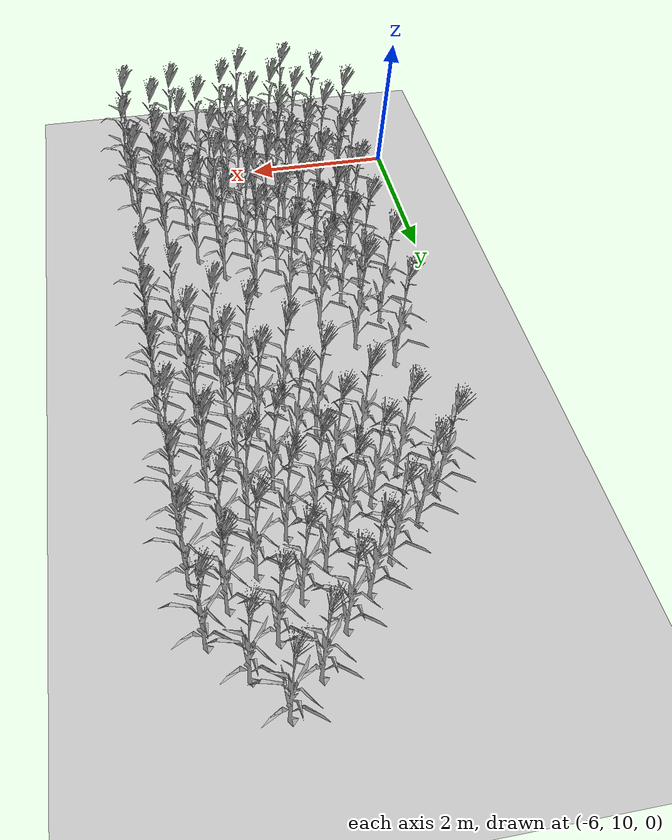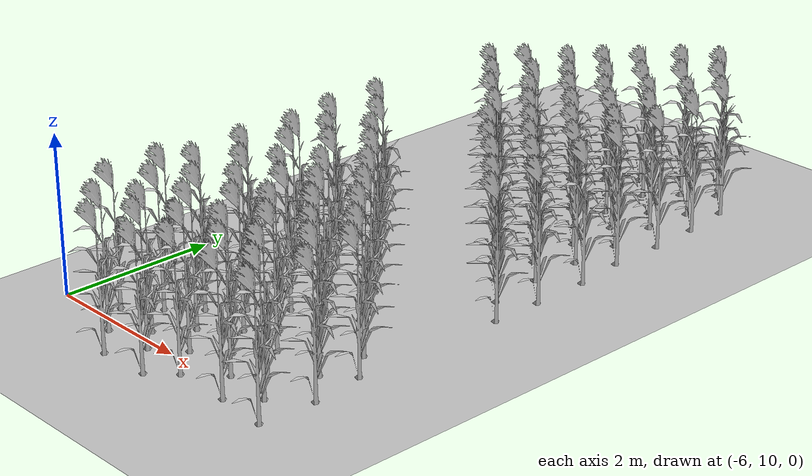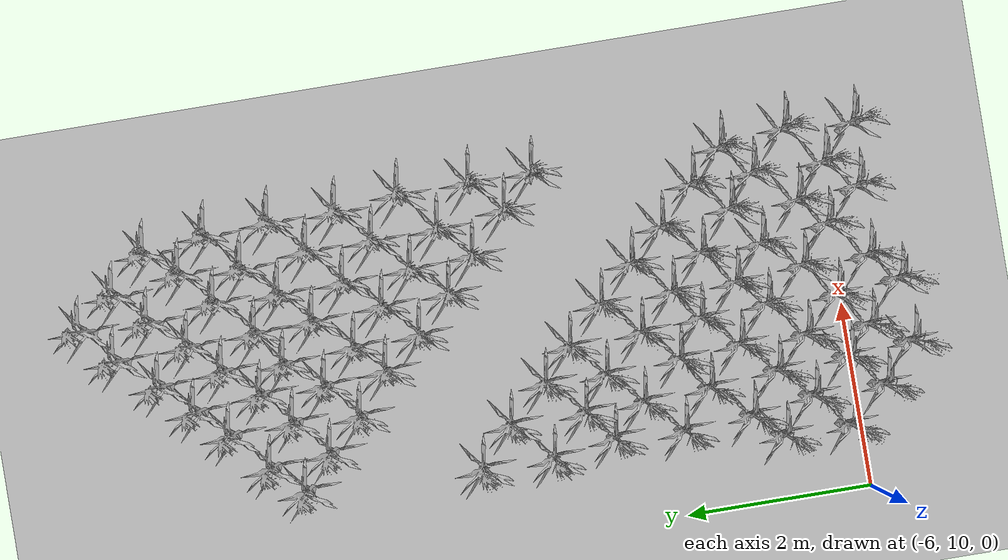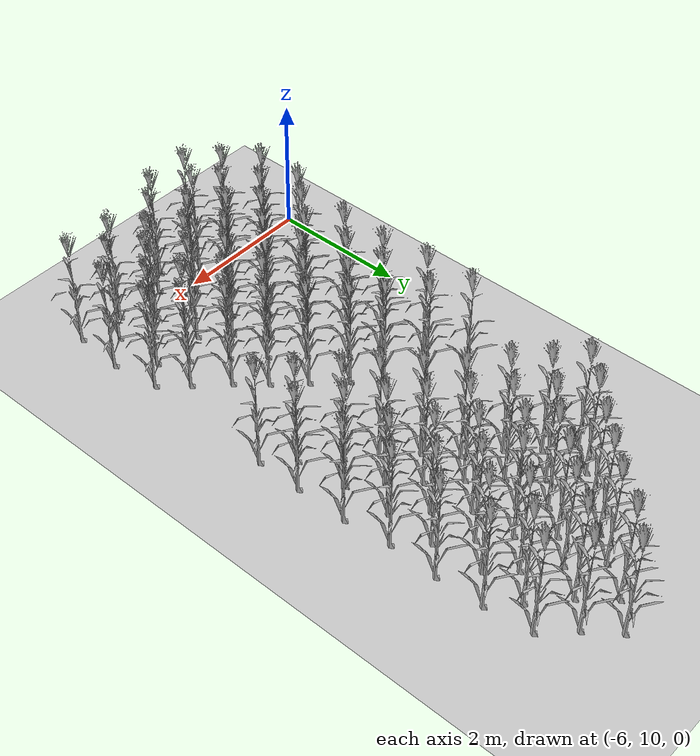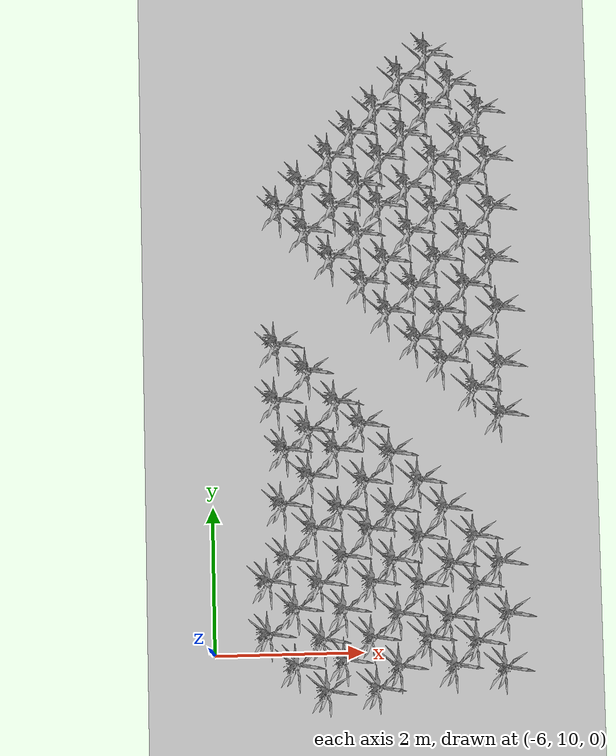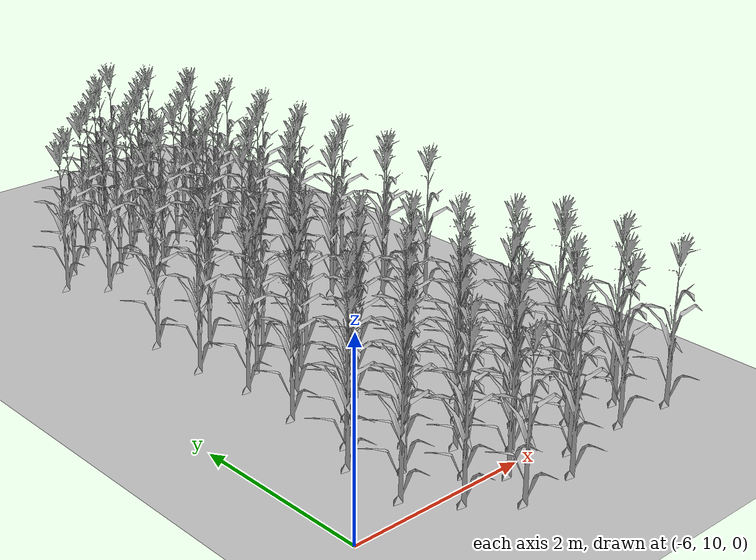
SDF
<sdf version="1.7">
 <world name="farmland_world">
  <model name="ground_plane">
   <static>1</static>
   <link name="link">
    <collision name="collision">
     <geometry><plane><normal>0 0 1</normal><size>40.0 40.0</size></plane></geometry>
     <surface><friction><ode><mu>100</mu><mu2>50</mu2></ode></friction></surface>
    </collision>
    <visual name="visual">
     <cast_shadows>0</cast_shadows>
     <geometry><plane><normal>0 0 1</normal><size>40.0 40.0</size></plane></geometry>
     <material>
      <script><uri>file://media/materials/scripts/gazebo.material</uri><name>Gazebo/Grey</name></script>
     </material>
    </visual>
   </link>
  </model>
  <model name="tree_3_26">
   <static>1</static>
   <link name="link">
    <collision name="collision">
     <geometry><mesh><uri>model://Corn_low_poly/corn.obj</uri><scale>1 1 1</scale></mesh></geometry>
     <surface><friction><ode><mu>100</mu><mu2>50</mu2></ode></friction></surface>
    </collision>
    <visual name="visual">
     <geometry><mesh><uri>model://Corn_low_poly/corn.obj</uri><scale>1 1 1</scale></mesh></geometry>
    </visual>
   </link>
   <pose>-4.469059998460315 9.478599175716573 0 0 0 0</pose>
  </model>
  <model name="tree_3_27">
   <static>1</static>
   <link name="link">
    <collision name="collision">
     <geometry><mesh><uri>model://Corn_low_poly/corn.obj</uri><scale>1 1 1</scale></mesh></geometry>
     <surface><friction><ode><mu>100</mu><mu2>50</mu2></ode></friction></surface>
    </collision>
    <visual name="visual">
     <geometry><mesh><uri>model://Corn_low_poly/corn.obj</uri><scale>1 1 1</scale></mesh></geometry>
    </visual>
   </link>
   <pose>-4.874260545740323 9.828441017179236 0 0 0 0</pose>
  </model>
  <model name="tree_3_28">
   <static>1</static>
   <link name="link">
    <collision name="collision">
     <geometry><mesh><uri>model://Corn_low_poly/corn.obj</uri><scale>1 1 1</scale></mesh></geometry>
     <surface><friction><ode><mu>100</mu><mu2>50</mu2></ode></friction></surface>
    </collision>
    <visual name="visual">
     <geometry><mesh><uri>model://Corn_low_poly/corn.obj</uri><scale>1 1 1</scale></mesh></geometry>
    </visual>
   </link>
   <pose>-5.236940694716296 10.24712145402504 0 0 0 0</pose>
  </model>
  <model name="tree_3_67">
   <static>1</static>
   <link name="link">
    <collision name="collision">
     <geometry><mesh><uri>model://Corn_low_poly/corn.obj</uri><scale>1 1 1</scale></mesh></geometry>
     <surface><friction><ode><mu>100</mu><mu2>50</mu2></ode></friction></surface>
    </collision>
    <visual name="visual">
     <geometry><mesh><uri>model://Corn_low_poly/corn.obj</uri><scale>1 1 1</scale></mesh></geometry>
    </visual>
   </link>
   <pose>-3.803372568948871 9.50891590499352 0 0 0 0</pose>
  </model>
  <model name="tree_3_68">
   <static>1</static>
   <link name="link">
    <collision name="collision">
     <geometry><mesh><uri>model://Corn_low_poly/corn.obj</uri><scale>1 1 1</scale></mesh></geometry>
     <surface><friction><ode><mu>100</mu><mu2>50</mu2></ode></friction></surface>
    </collision>
    <visual name="visual">
     <geometry><mesh><uri>model://Corn_low_poly/corn.obj</uri><scale>1 1 1</scale></mesh></geometry>
    </visual>
   </link>
   <pose>-4.231819792319192 9.886134785722836 0 0 0 0</pose>
  </model>
  <model name="tree_3_69">
   <static>1</static>
   <link name="link">
    <collision name="collision">
     <geometry><mesh><uri>model://Corn_low_poly/corn.obj</uri><scale>1 1 1</scale></mesh></geometry>
     <surface><friction><ode><mu>100</mu><mu2>50</mu2></ode></friction></surface>
    </collision>
    <visual name="visual">
     <geometry><mesh><uri>model://Corn_low_poly/corn.obj</uri><scale>1 1 1</scale></mesh></geometry>
    </visual>
   </link>
   <pose>-4.523126618101992 10.159602009444866 0 0 0 0</pose>
  </model>
  <model name="tree_3_70">
   <static>1</static>
   <link name="link">
    <collision name="collision">
     <geometry><mesh><uri>model://Corn_low_poly/corn.obj</uri><scale>1 1 1</scale></mesh></geometry>
     <surface><friction><ode><mu>100</mu><mu2>50</mu2></ode></friction></surface>
    </collision>
    <visual name="visual">
     <geometry><mesh><uri>model://Corn_low_poly/corn.obj</uri><scale>1 1 1</scale></mesh></geometry>
    </visual>
   </link>
   <pose>-4.870097143145961 10.584515150752816 0 0 0 0</pose>
  </model>
  <model name="tree_3_71">
   <static>1</static>
   <link name="link">
    <collision name="collision">
     <geometry><mesh><uri>model://Corn_low_poly/corn.obj</uri><scale>1 1 1</scale></mesh></geometry>
     <surface><friction><ode><mu>100</mu><mu2>50</mu2></ode></friction></surface>
    </collision>
    <visual name="visual">
     <geometry><mesh><uri>model://Corn_low_poly/corn.obj</uri><scale>1 1 1</scale></mesh></geometry>
    </visual>
   </link>
   <pose>-5.231342893370602 10.948013698945493 0 0 0 0</pose>
  </model>
  <model name="tree_3_109">
   <static>1</static>
   <link name="link">
    <collision name="collision">
     <geometry><mesh><uri>model://Corn_low_poly/corn.obj</uri><scale>1 1 1</scale></mesh></geometry>
     <surface><friction><ode><mu>100</mu><mu2>50</mu2></ode></friction></surface>
    </collision>
    <visual name="visual">
     <geometry><mesh><uri>model://Corn_low_poly/corn.obj</uri><scale>1 1 1</scale></mesh></geometry>
    </visual>
   </link>
   <pose>-3.5115282742998133 9.789023667474527 0 0 0 0</pose>
  </model>
  <model name="tree_3_110">
   <static>1</static>
   <link name="link">
    <collision name="collision">
     <geometry><mesh><uri>model://Corn_low_poly/corn.obj</uri><scale>1 1 1</scale></mesh></geometry>
     <surface><friction><ode><mu>100</mu><mu2>50</mu2></ode></friction></surface>
    </collision>
    <visual name="visual">
     <geometry><mesh><uri>model://Corn_low_poly/corn.obj</uri><scale>1 1 1</scale></mesh></geometry>
    </visual>
   </link>
   <pose>-3.8657024815988876 10.18034561499168 0 0 0 0</pose>
  </model>
  <model name="tree_3_111">
   <static>1</static>
   <link name="link">
    <collision name="collision">
     <geometry><mesh><uri>model://Corn_low_poly/corn.obj</uri><scale>1 1 1</scale></mesh></geometry>
     <surface><friction><ode><mu>100</mu><mu2>50</mu2></ode></friction></surface>
    </collision>
    <visual name="visual">
     <geometry><mesh><uri>model://Corn_low_poly/corn.obj</uri><scale>1 1 1</scale></mesh></geometry>
    </visual>
   </link>
   <pose>-4.2301715889407125 10.559730641724155 0 0 0 0</pose>
  </model>
  <model name="tree_3_112">
   <static>1</static>
   <link name="link">
    <collision name="collision">
     <geometry><mesh><uri>model://Corn_low_poly/corn.obj</uri><scale>1 1 1</scale></mesh></geometry>
     <surface><friction><ode><mu>100</mu><mu2>50</mu2></ode></friction></surface>
    </collision>
    <visual name="visual">
     <geometry><mesh><uri>model://Corn_low_poly/corn.obj</uri><scale>1 1 1</scale></mesh></geometry>
    </visual>
   </link>
   <pose>-4.547789902803861 10.918492866954 0 0 0 0</pose>
  </model>
  <model name="tree_3_113">
   <static>1</static>
   <link name="link">
    <collision name="collision">
     <geometry><mesh><uri>model://Corn_low_poly/corn.obj</uri><scale>1 1 1</scale></mesh></geometry>
     <surface><friction><ode><mu>100</mu><mu2>50</mu2></ode></friction></surface>
    </collision>
    <visual name="visual">
     <geometry><mesh><uri>model://Corn_low_poly/corn.obj</uri><scale>1 1 1</scale></mesh></geometry>
    </visual>
   </link>
   <pose>-4.97658573238629 11.24874929194991 0 0 0 0</pose>
  </model>
  <model name="tree_3_150">
   <static>1</static>
   <link name="link">
    <collision name="collision">
     <geometry><mesh><uri>model://Corn_low_poly/corn.obj</uri><scale>1 1 1</scale></mesh></geometry>
     <surface><friction><ode><mu>100</mu><mu2>50</mu2></ode></friction></surface>
    </collision>
    <visual name="visual">
     <geometry><mesh><uri>model://Corn_low_poly/corn.obj</uri><scale>1 1 1</scale></mesh></geometry>
    </visual>
   </link>
   <pose>-2.777045149808714 9.783201511120538 0 0 0 0</pose>
  </model>
  <model name="tree_3_151">
   <static>1</static>
   <link name="link">
    <collision name="collision">
     <geometry><mesh><uri>model://Corn_low_poly/corn.obj</uri><scale>1 1 1</scale></mesh></geometry>
     <surface><friction><ode><mu>100</mu><mu2>50</mu2></ode></friction></surface>
    </collision>
    <visual name="visual">
     <geometry><mesh><uri>model://Corn_low_poly/corn.obj</uri><scale>1 1 1</scale></mesh></geometry>
    </visual>
   </link>
   <pose>-3.1170916047006396 10.160107613300994 0 0 0 0</pose>
  </model>
  <model name="tree_3_152">
   <static>1</static>
   <link name="link">
    <collision name="collision">
     <geometry><mesh><uri>model://Corn_low_poly/corn.obj</uri><scale>1 1 1</scale></mesh></geometry>
     <surface><friction><ode><mu>100</mu><mu2>50</mu2></ode></friction></surface>
    </collision>
    <visual name="visual">
     <geometry><mesh><uri>model://Corn_low_poly/corn.obj</uri><scale>1 1 1</scale></mesh></geometry>
    </visual>
   </link>
   <pose>-3.5062092526561104 10.484946603833823 0 0 0 0</pose>
  </model>
  <model name="tree_3_153">
   <static>1</static>
   <link name="link">
    <collision name="collision">
     <geometry><mesh><uri>model://Corn_low_poly/corn.obj</uri><scale>1 1 1</scale></mesh></geometry>
     <surface><friction><ode><mu>100</mu><mu2>50</mu2></ode></friction></surface>
    </collision>
    <visual name="visual">
     <geometry><mesh><uri>model://Corn_low_poly/corn.obj</uri><scale>1 1 1</scale></mesh></geometry>
    </visual>
   </link>
   <pose>-3.8455674199756977 10.914706619010351 0 0 0 0</pose>
  </model>
  <model name="tree_3_154">
   <static>1</static>
   <link name="link">
    <collision name="collision">
     <geometry><mesh><uri>model://Corn_low_poly/corn.obj</uri><scale>1 1 1</scale></mesh></geometry>
     <surface><friction><ode><mu>100</mu><mu2>50</mu2></ode></friction></surface>
    </collision>
    <visual name="visual">
     <geometry><mesh><uri>model://Corn_low_poly/corn.obj</uri><scale>1 1 1</scale></mesh></geometry>
    </visual>
   </link>
   <pose>-4.21740432793989 11.260427735038299 0 0 0 0</pose>
  </model>
  <model name="tree_3_155">
   <static>1</static>
   <link name="link">
    <collision name="collision">
     <geometry><mesh><uri>model://Corn_low_poly/corn.obj</uri><scale>1 1 1</scale></mesh></geometry>
     <surface><friction><ode><mu>100</mu><mu2>50</mu2></ode></friction></surface>
    </collision>
    <visual name="visual">
     <geometry><mesh><uri>model://Corn_low_poly/corn.obj</uri><scale>1 1 1</scale></mesh></geometry>
    </visual>
   </link>
   <pose>-4.614973447166338 11.642006517294606 0 0 0 0</pose>
  </model>
  <model name="tree_3_156">
   <static>1</static>
   <link name="link">
    <collision name="collision">
     <geometry><mesh><uri>model://Corn_low_poly/corn.obj</uri><scale>1 1 1</scale></mesh></geometry>
     <surface><friction><ode><mu>100</mu><mu2>50</mu2></ode></friction></surface>
    </collision>
    <visual name="visual">
     <geometry><mesh><uri>model://Corn_low_poly/corn.obj</uri><scale>1 1 1</scale></mesh></geometry>
    </visual>
   </link>
   <pose>-5.023405975926107 11.973016827268847 0 0 0 0</pose>
  </model>
  <model name="tree_3_191">
   <static>1</static>
   <link name="link">
    <collision name="collision">
     <geometry><mesh><uri>model://Corn_low_poly/corn.obj</uri><scale>1 1 1</scale></mesh></geometry>
     <surface><friction><ode><mu>100</mu><mu2>50</mu2></ode></friction></surface>
    </collision>
    <visual name="visual">
     <geometry><mesh><uri>model://Corn_low_poly/corn.obj</uri><scale>1 1 1</scale></mesh></geometry>
    </visual>
   </link>
   <pose>-2.1156740361542545 9.735910322645081 0 0 0 0</pose>
  </model>
  <model name="tree_3_192">
   <static>1</static>
   <link name="link">
    <collision name="collision">
     <geometry><mesh><uri>model://Corn_low_poly/corn.obj</uri><scale>1 1 1</scale></mesh></geometry>
     <surface><friction><ode><mu>100</mu><mu2>50</mu2></ode></friction></surface>
    </collision>
    <visual name="visual">
     <geometry><mesh><uri>model://Corn_low_poly/corn.obj</uri><scale>1 1 1</scale></mesh></geometry>
    </visual>
   </link>
   <pose>-2.477555889560488 10.09682091963969 0 0 0 0</pose>
  </model>
  <model name="tree_3_193">
   <static>1</static>
   <link name="link">
    <collision name="collision">
     <geometry><mesh><uri>model://Corn_low_poly/corn.obj</uri><scale>1 1 1</scale></mesh></geometry>
     <surface><friction><ode><mu>100</mu><mu2>50</mu2></ode></friction></surface>
    </collision>
    <visual name="visual">
     <geometry><mesh><uri>model://Corn_low_poly/corn.obj</uri><scale>1 1 1</scale></mesh></geometry>
    </visual>
   </link>
   <pose>-2.831285804488437 10.428553766145923 0 0 0 0</pose>
  </model>
  <model name="tree_3_194">
   <static>1</static>
   <link name="link">
    <collision name="collision">
     <geometry><mesh><uri>model://Corn_low_poly/corn.obj</uri><scale>1 1 1</scale></mesh></geometry>
     <surface><friction><ode><mu>100</mu><mu2>50</mu2></ode></friction></surface>
    </collision>
    <visual name="visual">
     <geometry><mesh><uri>model://Corn_low_poly/corn.obj</uri><scale>1 1 1</scale></mesh></geometry>
    </visual>
   </link>
   <pose>-3.212465217783829 10.875241409644055 0 0 0 0</pose>
  </model>
  <model name="tree_3_195">
   <static>1</static>
   <link name="link">
    <collision name="collision">
     <geometry><mesh><uri>model://Corn_low_poly/corn.obj</uri><scale>1 1 1</scale></mesh></geometry>
     <surface><friction><ode><mu>100</mu><mu2>50</mu2></ode></friction></surface>
    </collision>
    <visual name="visual">
     <geometry><mesh><uri>model://Corn_low_poly/corn.obj</uri><scale>1 1 1</scale></mesh></geometry>
    </visual>
   </link>
   <pose>-3.570542005007188 11.198569467584445 0 0 0 0</pose>
  </model>
  <model name="tree_3_196">
   <static>1</static>
   <link name="link">
    <collision name="collision">
     <geometry><mesh><uri>model://Corn_low_poly/corn.obj</uri><scale>1 1 1</scale></mesh></geometry>
     <surface><friction><ode><mu>100</mu><mu2>50</mu2></ode></friction></surface>
    </collision>
    <visual name="visual">
     <geometry><mesh><uri>model://Corn_low_poly/corn.obj</uri><scale>1 1 1</scale></mesh></geometry>
    </visual>
   </link>
   <pose>-3.879797104639543 11.62257480078937 0 0 0 0</pose>
  </model>
  <model name="tree_3_197">
   <static>1</static>
   <link name="link">
    <collision name="collision">
     <geometry><mesh><uri>model://Corn_low_poly/corn.obj</uri><scale>1 1 1</scale></mesh></geometry>
     <surface><friction><ode><mu>100</mu><mu2>50</mu2></ode></friction></surface>
    </collision>
    <visual name="visual">
     <geometry><mesh><uri>model://Corn_low_poly/corn.obj</uri><scale>1 1 1</scale></mesh></geometry>
    </visual>
   </link>
   <pose>-4.264341386641768 11.904513386529207 0 0 0 0</pose>
  </model>
  <model name="tree_3_198">
   <static>1</static>
   <link name="link">
    <collision name="collision">
     <geometry><mesh><uri>model://Corn_low_poly/corn.obj</uri><scale>1 1 1</scale></mesh></geometry>
     <surface><friction><ode><mu>100</mu><mu2>50</mu2></ode></friction></surface>
    </collision>
    <visual name="visual">
     <geometry><mesh><uri>model://Corn_low_poly/corn.obj</uri><scale>1 1 1</scale></mesh></geometry>
    </visual>
   </link>
   <pose>-4.6519069842481935 12.345668603808702 0 0 0 0</pose>
  </model>
  <model name="tree_3_199">
   <static>1</static>
   <link name="link">
    <collision name="collision">
     <geometry><mesh><uri>model://Corn_low_poly/corn.obj</uri><scale>1 1 1</scale></mesh></geometry>
     <surface><friction><ode><mu>100</mu><mu2>50</mu2></ode></friction></surface>
    </collision>
    <visual name="visual">
     <geometry><mesh><uri>model://Corn_low_poly/corn.obj</uri><scale>1 1 1</scale></mesh></geometry>
    </visual>
   </link>
   <pose>-4.978579776167211 12.705514492981374 0 0 0 0</pose>
  </model>
  <model name="tree_3_234">
   <static>1</static>
   <link name="link">
    <collision name="collision">
     <geometry><mesh><uri>model://Corn_low_poly/corn.obj</uri><scale>1 1 1</scale></mesh></geometry>
     <surface><friction><ode><mu>100</mu><mu2>50</mu2></ode></friction></surface>
    </collision>
    <visual name="visual">
     <geometry><mesh><uri>model://Corn_low_poly/corn.obj</uri><scale>1 1 1</scale></mesh></geometry>
    </visual>
   </link>
   <pose>-2.065777106225148 10.452985087394346 0 0 0 0</pose>
  </model>
  <model name="tree_3_235">
   <static>1</static>
   <link name="link">
    <collision name="collision">
     <geometry><mesh><uri>model://Corn_low_poly/corn.obj</uri><scale>1 1 1</scale></mesh></geometry>
     <surface><friction><ode><mu>100</mu><mu2>50</mu2></ode></friction></surface>
    </collision>
    <visual name="visual">
     <geometry><mesh><uri>model://Corn_low_poly/corn.obj</uri><scale>1 1 1</scale></mesh></geometry>
    </visual>
   </link>
   <pose>-2.4737999814001976 10.848935055962043 0 0 0 0</pose>
  </model>
  <model name="tree_3_236">
   <static>1</static>
   <link name="link">
    <collision name="collision">
     <geometry><mesh><uri>model://Corn_low_poly/corn.obj</uri><scale>1 1 1</scale></mesh></geometry>
     <surface><friction><ode><mu>100</mu><mu2>50</mu2></ode></friction></surface>
    </collision>
    <visual name="visual">
     <geometry><mesh><uri>model://Corn_low_poly/corn.obj</uri><scale>1 1 1</scale></mesh></geometry>
    </visual>
   </link>
   <pose>-2.802729831648633 11.134096234422618 0 0 0 0</pose>
  </model>
  <model name="tree_3_237">
   <static>1</static>
   <link name="link">
    <collision name="collision">
     <geometry><mesh><uri>model://Corn_low_poly/corn.obj</uri><scale>1 1 1</scale></mesh></geometry>
     <surface><friction><ode><mu>100</mu><mu2>50</mu2></ode></friction></surface>
    </collision>
    <visual name="visual">
     <geometry><mesh><uri>model://Corn_low_poly/corn.obj</uri><scale>1 1 1</scale></mesh></geometry>
    </visual>
   </link>
   <pose>-3.2053257626202583 11.50024580088151 0 0 0 0</pose>
  </model>
  <model name="tree_3_238">
   <static>1</static>
   <link name="link">
    <collision name="collision">
     <geometry><mesh><uri>model://Corn_low_poly/corn.obj</uri><scale>1 1 1</scale></mesh></geometry>
     <surface><friction><ode><mu>100</mu><mu2>50</mu2></ode></friction></surface>
    </collision>
    <visual name="visual">
     <geometry><mesh><uri>model://Corn_low_poly/corn.obj</uri><scale>1 1 1</scale></mesh></geometry>
    </visual>
   </link>
   <pose>-3.5638594356719953 11.870475484291479 0 0 0 0</pose>
  </model>
  <model name="tree_3_239">
   <static>1</static>
   <link name="link">
    <collision name="collision">
     <geometry><mesh><uri>model://Corn_low_poly/corn.obj</uri><scale>1 1 1</scale></mesh></geometry>
     <surface><friction><ode><mu>100</mu><mu2>50</mu2></ode></friction></surface>
    </collision>
    <visual name="visual">
     <geometry><mesh><uri>model://Corn_low_poly/corn.obj</uri><scale>1 1 1</scale></mesh></geometry>
    </visual>
   </link>
   <pose>-3.928758618712539 12.257131159231852 0 0 0 0</pose>
  </model>
  <model name="tree_3_240">
   <static>1</static>
   <link name="link">
    <collision name="collision">
     <geometry><mesh><uri>model://Corn_low_poly/corn.obj</uri><scale>1 1 1</scale></mesh></geometry>
     <surface><friction><ode><mu>100</mu><mu2>50</mu2></ode></friction></surface>
    </collision>
    <visual name="visual">
     <geometry><mesh><uri>model://Corn_low_poly/corn.obj</uri><scale>1 1 1</scale></mesh></geometry>
    </visual>
   </link>
   <pose>-4.306459021047882 12.686938649180616 0 0 0 0</pose>
  </model>
  <model name="tree_3_241">
   <static>1</static>
   <link name="link">
    <collision name="collision">
     <geometry><mesh><uri>model://Corn_low_poly/corn.obj</uri><scale>1 1 1</scale></mesh></geometry>
     <surface><friction><ode><mu>100</mu><mu2>50</mu2></ode></friction></surface>
    </collision>
    <visual name="visual">
     <geometry><mesh><uri>model://Corn_low_poly/corn.obj</uri><scale>1 1 1</scale></mesh></geometry>
    </visual>
   </link>
   <pose>-4.660973862532251 12.96193115040392 0 0 0 0</pose>
  </model>
  <model name="tree_3_242">
   <static>1</static>
   <link name="link">
    <collision name="collision">
     <geometry><mesh><uri>model://Corn_low_poly/corn.obj</uri><scale>1 1 1</scale></mesh></geometry>
     <surface><friction><ode><mu>100</mu><mu2>50</mu2></ode></friction></surface>
    </collision>
    <visual name="visual">
     <geometry><mesh><uri>model://Corn_low_poly/corn.obj</uri><scale>1 1 1</scale></mesh></geometry>
    </visual>
   </link>
   <pose>-5.084721238031691 13.362268108703844 0 0 0 0</pose>
  </model>
  <model name="tree_3_277">
   <static>1</static>
   <link name="link">
    <collision name="collision">
     <geometry><mesh><uri>model://Corn_low_poly/corn.obj</uri><scale>1 1 1</scale></mesh></geometry>
     <surface><friction><ode><mu>100</mu><mu2>50</mu2></ode></friction></surface>
    </collision>
    <visual name="visual">
     <geometry><mesh><uri>model://Corn_low_poly/corn.obj</uri><scale>1 1 1</scale></mesh></geometry>
    </visual>
   </link>
   <pose>-2.161152412799988 11.13968140537345 0 0 0 0</pose>
  </model>
  <model name="tree_3_278">
   <static>1</static>
   <link name="link">
    <collision name="collision">
     <geometry><mesh><uri>model://Corn_low_poly/corn.obj</uri><scale>1 1 1</scale></mesh></geometry>
     <surface><friction><ode><mu>100</mu><mu2>50</mu2></ode></friction></surface>
    </collision>
    <visual name="visual">
     <geometry><mesh><uri>model://Corn_low_poly/corn.obj</uri><scale>1 1 1</scale></mesh></geometry>
    </visual>
   </link>
   <pose>-2.48626986987958 11.490120902260953 0 0 0 0</pose>
  </model>
  <model name="tree_3_279">
   <static>1</static>
   <link name="link">
    <collision name="collision">
     <geometry><mesh><uri>model://Corn_low_poly/corn.obj</uri><scale>1 1 1</scale></mesh></geometry>
     <surface><friction><ode><mu>100</mu><mu2>50</mu2></ode></friction></surface>
    </collision>
    <visual name="visual">
     <geometry><mesh><uri>model://Corn_low_poly/corn.obj</uri><scale>1 1 1</scale></mesh></geometry>
    </visual>
   </link>
   <pose>-2.8777319955502976 11.87523020921863 0 0 0 0</pose>
  </model>
  <model name="tree_3_280">
   <static>1</static>
   <link name="link">
    <collision name="collision">
     <geometry><mesh><uri>model://Corn_low_poly/corn.obj</uri><scale>1 1 1</scale></mesh></geometry>
     <surface><friction><ode><mu>100</mu><mu2>50</mu2></ode></friction></surface>
    </collision>
    <visual name="visual">
     <geometry><mesh><uri>model://Corn_low_poly/corn.obj</uri><scale>1 1 1</scale></mesh></geometry>
    </visual>
   </link>
   <pose>-3.202977248602994 12.246826266834626 0 0 0 0</pose>
  </model>
  <model name="tree_3_281">
   <static>1</static>
   <link name="link">
    <collision name="collision">
     <geometry><mesh><uri>model://Corn_low_poly/corn.obj</uri><scale>1 1 1</scale></mesh></geometry>
     <surface><friction><ode><mu>100</mu><mu2>50</mu2></ode></friction></surface>
    </collision>
    <visual name="visual">
     <geometry><mesh><uri>model://Corn_low_poly/corn.obj</uri><scale>1 1 1</scale></mesh></geometry>
    </visual>
   </link>
   <pose>-3.571273144793536 12.627542658735882 0 0 0 0</pose>
  </model>
  <model name="tree_3_282">
   <static>1</static>
   <link name="link">
    <collision name="collision">
     <geometry><mesh><uri>model://Corn_low_poly/corn.obj</uri><scale>1 1 1</scale></mesh></geometry>
     <surface><friction><ode><mu>100</mu><mu2>50</mu2></ode></friction></surface>
    </collision>
    <visual name="visual">
     <geometry><mesh><uri>model://Corn_low_poly/corn.obj</uri><scale>1 1 1</scale></mesh></geometry>
    </visual>
   </link>
   <pose>-3.9543028440288515 13.01794276500993 0 0 0 0</pose>
  </model>
  <model name="tree_3_283">
   <static>1</static>
   <link name="link">
    <collision name="collision">
     <geometry><mesh><uri>model://Corn_low_poly/corn.obj</uri><scale>1 1 1</scale></mesh></geometry>
     <surface><friction><ode><mu>100</mu><mu2>50</mu2></ode></friction></surface>
    </collision>
    <visual name="visual">
     <geometry><mesh><uri>model://Corn_low_poly/corn.obj</uri><scale>1 1 1</scale></mesh></geometry>
    </visual>
   </link>
   <pose>-4.291986300902885 13.325325516594486 0 0 0 0</pose>
  </model>
  <model name="tree_3_284">
   <static>1</static>
   <link name="link">
    <collision name="collision">
     <geometry><mesh><uri>model://Corn_low_poly/corn.obj</uri><scale>1 1 1</scale></mesh></geometry>
     <surface><friction><ode><mu>100</mu><mu2>50</mu2></ode></friction></surface>
    </collision>
    <visual name="visual">
     <geometry><mesh><uri>model://Corn_low_poly/corn.obj</uri><scale>1 1 1</scale></mesh></geometry>
    </visual>
   </link>
   <pose>-4.665457055724903 13.748170590980628 0 0 0 0</pose>
  </model>
  <model name="tree_3_285">
   <static>1</static>
   <link name="link">
    <collision name="collision">
     <geometry><mesh><uri>model://Corn_low_poly/corn.obj</uri><scale>1 1 1</scale></mesh></geometry>
     <surface><friction><ode><mu>100</mu><mu2>50</mu2></ode></friction></surface>
    </collision>
    <visual name="visual">
     <geometry><mesh><uri>model://Corn_low_poly/corn.obj</uri><scale>1 1 1</scale></mesh></geometry>
    </visual>
   </link>
   <pose>-5.077481452975464 14.108120314758764 0 0 0 0</pose>
  </model>
  <model name="tree_3_330">
   <static>1</static>
   <link name="link">
    <collision name="collision">
     <geometry><mesh><uri>model://Corn_low_poly/corn.obj</uri><scale>1 1 1</scale></mesh></geometry>
     <surface><friction><ode><mu>100</mu><mu2>50</mu2></ode></friction></surface>
    </collision>
    <visual name="visual">
     <geometry><mesh><uri>model://Corn_low_poly/corn.obj</uri><scale>1 1 1</scale></mesh></geometry>
    </visual>
   </link>
   <pose>-2.0957195075240724 13.119023434824907 0 0 0 0</pose>
  </model>
  <model name="tree_3_331">
   <static>1</static>
   <link name="link">
    <collision name="collision">
     <geometry><mesh><uri>model://Corn_low_poly/corn.obj</uri><scale>1 1 1</scale></mesh></geometry>
     <surface><friction><ode><mu>100</mu><mu2>50</mu2></ode></friction></surface>
    </collision>
    <visual name="visual">
     <geometry><mesh><uri>model://Corn_low_poly/corn.obj</uri><scale>1 1 1</scale></mesh></geometry>
    </visual>
   </link>
   <pose>-2.4357312574331003 13.462042619602876 0 0 0 0</pose>
  </model>
  <model name="tree_3_332">
   <static>1</static>
   <link name="link">
    <collision name="collision">
     <geometry><mesh><uri>model://Corn_low_poly/corn.obj</uri><scale>1 1 1</scale></mesh></geometry>
     <surface><friction><ode><mu>100</mu><mu2>50</mu2></ode></friction></surface>
    </collision>
    <visual name="visual">
     <geometry><mesh><uri>model://Corn_low_poly/corn.obj</uri><scale>1 1 1</scale></mesh></geometry>
    </visual>
   </link>
   <pose>-2.851316927565565 13.86243467233704 0 0 0 0</pose>
  </model>
  <model name="tree_3_333">
   <static>1</static>
   <link name="link">
    <collision name="collision">
     <geometry><mesh><uri>model://Corn_low_poly/corn.obj</uri><scale>1 1 1</scale></mesh></geometry>
     <surface><friction><ode><mu>100</mu><mu2>50</mu2></ode></friction></surface>
    </collision>
    <visual name="visual">
     <geometry><mesh><uri>model://Corn_low_poly/corn.obj</uri><scale>1 1 1</scale></mesh></geometry>
    </visual>
   </link>
   <pose>-3.2029444814955004 14.167896151146785 0 0 0 0</pose>
  </model>
  <model name="tree_3_334">
   <static>1</static>
   <link name="link">
    <collision name="collision">
     <geometry><mesh><uri>model://Corn_low_poly/corn.obj</uri><scale>1 1 1</scale></mesh></geometry>
     <surface><friction><ode><mu>100</mu><mu2>50</mu2></ode></friction></surface>
    </collision>
    <visual name="visual">
     <geometry><mesh><uri>model://Corn_low_poly/corn.obj</uri><scale>1 1 1</scale></mesh></geometry>
    </visual>
   </link>
   <pose>-3.5790942110596173 14.538588518434022 0 0 0 0</pose>
  </model>
  <model name="tree_3_335">
   <static>1</static>
   <link name="link">
    <collision name="collision">
     <geometry><mesh><uri>model://Corn_low_poly/corn.obj</uri><scale>1 1 1</scale></mesh></geometry>
     <surface><friction><ode><mu>100</mu><mu2>50</mu2></ode></friction></surface>
    </collision>
    <visual name="visual">
     <geometry><mesh><uri>model://Corn_low_poly/corn.obj</uri><scale>1 1 1</scale></mesh></geometry>
    </visual>
   </link>
   <pose>-3.8919898223072438 14.943105690372729 0 0 0 0</pose>
  </model>
  <model name="tree_3_336">
   <static>1</static>
   <link name="link">
    <collision name="collision">
     <geometry><mesh><uri>model://Corn_low_poly/corn.obj</uri><scale>1 1 1</scale></mesh></geometry>
     <surface><friction><ode><mu>100</mu><mu2>50</mu2></ode></friction></surface>
    </collision>
    <visual name="visual">
     <geometry><mesh><uri>model://Corn_low_poly/corn.obj</uri><scale>1 1 1</scale></mesh></geometry>
    </visual>
   </link>
   <pose>-4.318554108580911 15.28602684152003 0 0 0 0</pose>
  </model>
  <model name="tree_3_337">
   <static>1</static>
   <link name="link">
    <collision name="collision">
     <geometry><mesh><uri>model://Corn_low_poly/corn.obj</uri><scale>1 1 1</scale></mesh></geometry>
     <surface><friction><ode><mu>100</mu><mu2>50</mu2></ode></friction></surface>
    </collision>
    <visual name="visual">
     <geometry><mesh><uri>model://Corn_low_poly/corn.obj</uri><scale>1 1 1</scale></mesh></geometry>
    </visual>
   </link>
   <pose>-4.652258239652703 15.653303856530764 0 0 0 0</pose>
  </model>
  <model name="tree_3_338">
   <static>1</static>
   <link name="link">
    <collision name="collision">
     <geometry><mesh><uri>model://Corn_low_poly/corn.obj</uri><scale>1 1 1</scale></mesh></geometry>
     <surface><friction><ode><mu>100</mu><mu2>50</mu2></ode></friction></surface>
    </collision>
    <visual name="visual">
     <geometry><mesh><uri>model://Corn_low_poly/corn.obj</uri><scale>1 1 1</scale></mesh></geometry>
    </visual>
   </link>
   <pose>-5.011443398209193 15.967241587261476 0 0 0 0</pose>
  </model>
  <model name="tree_3_376">
   <static>1</static>
   <link name="link">
    <collision name="collision">
     <geometry><mesh><uri>model://Corn_low_poly/corn.obj</uri><scale>1 1 1</scale></mesh></geometry>
     <surface><friction><ode><mu>100</mu><mu2>50</mu2></ode></friction></surface>
    </collision>
    <visual name="visual">
     <geometry><mesh><uri>model://Corn_low_poly/corn.obj</uri><scale>1 1 1</scale></mesh></geometry>
    </visual>
   </link>
   <pose>-2.0945310350101214 13.786020609273224 0 0 0 0</pose>
  </model>
  <model name="tree_3_377">
   <static>1</static>
   <link name="link">
    <collision name="collision">
     <geometry><mesh><uri>model://Corn_low_poly/corn.obj</uri><scale>1 1 1</scale></mesh></geometry>
     <surface><friction><ode><mu>100</mu><mu2>50</mu2></ode></friction></surface>
    </collision>
    <visual name="visual">
     <geometry><mesh><uri>model://Corn_low_poly/corn.obj</uri><scale>1 1 1</scale></mesh></geometry>
    </visual>
   </link>
   <pose>-2.5220168192405867 14.182041537426617 0 0 0 0</pose>
  </model>
  <model name="tree_3_378">
   <static>1</static>
   <link name="link">
    <collision name="collision">
     <geometry><mesh><uri>model://Corn_low_poly/corn.obj</uri><scale>1 1 1</scale></mesh></geometry>
     <surface><friction><ode><mu>100</mu><mu2>50</mu2></ode></friction></surface>
    </collision>
    <visual name="visual">
     <geometry><mesh><uri>model://Corn_low_poly/corn.obj</uri><scale>1 1 1</scale></mesh></geometry>
    </visual>
   </link>
   <pose>-2.8879340421332365 14.524241956170114 0 0 0 0</pose>
  </model>
  <model name="tree_3_379">
   <static>1</static>
   <link name="link">
    <collision name="collision">
     <geometry><mesh><uri>model://Corn_low_poly/corn.obj</uri><scale>1 1 1</scale></mesh></geometry>
     <surface><friction><ode><mu>100</mu><mu2>50</mu2></ode></friction></surface>
    </collision>
    <visual name="visual">
     <geometry><mesh><uri>model://Corn_low_poly/corn.obj</uri><scale>1 1 1</scale></mesh></geometry>
    </visual>
   </link>
   <pose>-3.2177770476595544 14.87267752242009 0 0 0 0</pose>
  </model>
  <model name="tree_3_380">
   <static>1</static>
   <link name="link">
    <collision name="collision">
     <geometry><mesh><uri>model://Corn_low_poly/corn.obj</uri><scale>1 1 1</scale></mesh></geometry>
     <surface><friction><ode><mu>100</mu><mu2>50</mu2></ode></friction></surface>
    </collision>
    <visual name="visual">
     <geometry><mesh><uri>model://Corn_low_poly/corn.obj</uri><scale>1 1 1</scale></mesh></geometry>
    </visual>
   </link>
   <pose>-3.593882769549447 15.227741780496519 0 0 0 0</pose>
  </model>
  <model name="tree_3_381">
   <static>1</static>
   <link name="link">
    <collision name="collision">
     <geometry><mesh><uri>model://Corn_low_poly/corn.obj</uri><scale>1 1 1</scale></mesh></geometry>
     <surface><friction><ode><mu>100</mu><mu2>50</mu2></ode></friction></surface>
    </collision>
    <visual name="visual">
     <geometry><mesh><uri>model://Corn_low_poly/corn.obj</uri><scale>1 1 1</scale></mesh></geometry>
    </visual>
   </link>
   <pose>-3.9439912698055903 15.596676246466668 0 0 0 0</pose>
  </model>
  <model name="tree_3_382">
   <static>1</static>
   <link name="link">
    <collision name="collision">
     <geometry><mesh><uri>model://Corn_low_poly/corn.obj</uri><scale>1 1 1</scale></mesh></geometry>
     <surface><friction><ode><mu>100</mu><mu2>50</mu2></ode></friction></surface>
    </collision>
    <visual name="visual">
     <geometry><mesh><uri>model://Corn_low_poly/corn.obj</uri><scale>1 1 1</scale></mesh></geometry>
    </visual>
   </link>
   <pose>-4.274435433451565 15.98361768433369 0 0 0 0</pose>
  </model>
  <model name="tree_3_383">
   <static>1</static>
   <link name="link">
    <collision name="collision">
     <geometry><mesh><uri>model://Corn_low_poly/corn.obj</uri><scale>1 1 1</scale></mesh></geometry>
     <surface><friction><ode><mu>100</mu><mu2>50</mu2></ode></friction></surface>
    </collision>
    <visual name="visual">
     <geometry><mesh><uri>model://Corn_low_poly/corn.obj</uri><scale>1 1 1</scale></mesh></geometry>
    </visual>
   </link>
   <pose>-4.710899018139091 16.290551193682298 0 0 0 0</pose>
  </model>
  <model name="tree_3_422">
   <static>1</static>
   <link name="link">
    <collision name="collision">
     <geometry><mesh><uri>model://Corn_low_poly/corn.obj</uri><scale>1 1 1</scale></mesh></geometry>
     <surface><friction><ode><mu>100</mu><mu2>50</mu2></ode></friction></surface>
    </collision>
    <visual name="visual">
     <geometry><mesh><uri>model://Corn_low_poly/corn.obj</uri><scale>1 1 1</scale></mesh></geometry>
    </visual>
   </link>
   <pose>-2.1003591512286968 14.532991127476654 0 0 0 0</pose>
  </model>
  <model name="tree_3_423">
   <static>1</static>
   <link name="link">
    <collision name="collision">
     <geometry><mesh><uri>model://Corn_low_poly/corn.obj</uri><scale>1 1 1</scale></mesh></geometry>
     <surface><friction><ode><mu>100</mu><mu2>50</mu2></ode></friction></surface>
    </collision>
    <visual name="visual">
     <geometry><mesh><uri>model://Corn_low_poly/corn.obj</uri><scale>1 1 1</scale></mesh></geometry>
    </visual>
   </link>
   <pose>-2.531960596665796 14.869632016131249 0 0 0 0</pose>
  </model>
  <model name="tree_3_424">
   <static>1</static>
   <link name="link">
    <collision name="collision">
     <geometry><mesh><uri>model://Corn_low_poly/corn.obj</uri><scale>1 1 1</scale></mesh></geometry>
     <surface><friction><ode><mu>100</mu><mu2>50</mu2></ode></friction></surface>
    </collision>
    <visual name="visual">
     <geometry><mesh><uri>model://Corn_low_poly/corn.obj</uri><scale>1 1 1</scale></mesh></geometry>
    </visual>
   </link>
   <pose>-2.9108347569874935 15.233314232587679 0 0 0 0</pose>
  </model>
  <model name="tree_3_425">
   <static>1</static>
   <link name="link">
    <collision name="collision">
     <geometry><mesh><uri>model://Corn_low_poly/corn.obj</uri><scale>1 1 1</scale></mesh></geometry>
     <surface><friction><ode><mu>100</mu><mu2>50</mu2></ode></friction></surface>
    </collision>
    <visual name="visual">
     <geometry><mesh><uri>model://Corn_low_poly/corn.obj</uri><scale>1 1 1</scale></mesh></geometry>
    </visual>
   </link>
   <pose>-3.257811562056236 15.611721196708997 0 0 0 0</pose>
  </model>
  <model name="tree_3_426">
   <static>1</static>
   <link name="link">
    <collision name="collision">
     <geometry><mesh><uri>model://Corn_low_poly/corn.obj</uri><scale>1 1 1</scale></mesh></geometry>
     <surface><friction><ode><mu>100</mu><mu2>50</mu2></ode></friction></surface>
    </collision>
    <visual name="visual">
     <geometry><mesh><uri>model://Corn_low_poly/corn.obj</uri><scale>1 1 1</scale></mesh></geometry>
    </visual>
   </link>
   <pose>-3.6517199307681807 15.981166254699776 0 0 0 0</pose>
  </model>
  <model name="tree_3_427">
   <static>1</static>
   <link name="link">
    <collision name="collision">
     <geometry><mesh><uri>model://Corn_low_poly/corn.obj</uri><scale>1 1 1</scale></mesh></geometry>
     <surface><friction><ode><mu>100</mu><mu2>50</mu2></ode></friction></surface>
    </collision>
    <visual name="visual">
     <geometry><mesh><uri>model://Corn_low_poly/corn.obj</uri><scale>1 1 1</scale></mesh></geometry>
    </visual>
   </link>
   <pose>-3.9301883578120926 16.269024111922914 0 0 0 0</pose>
  </model>
  <model name="tree_3_428">
   <static>1</static>
   <link name="link">
    <collision name="collision">
     <geometry><mesh><uri>model://Corn_low_poly/corn.obj</uri><scale>1 1 1</scale></mesh></geometry>
     <surface><friction><ode><mu>100</mu><mu2>50</mu2></ode></friction></surface>
    </collision>
    <visual name="visual">
     <geometry><mesh><uri>model://Corn_low_poly/corn.obj</uri><scale>1 1 1</scale></mesh></geometry>
    </visual>
   </link>
   <pose>-4.304971924510654 16.65716102737266 0 0 0 0</pose>
  </model>
  <model name="tree_3_468">
   <static>1</static>
   <link name="link">
    <collision name="collision">
     <geometry><mesh><uri>model://Corn_low_poly/corn.obj</uri><scale>1 1 1</scale></mesh></geometry>
     <surface><friction><ode><mu>100</mu><mu2>50</mu2></ode></friction></surface>
    </collision>
    <visual name="visual">
     <geometry><mesh><uri>model://Corn_low_poly/corn.obj</uri><scale>1 1 1</scale></mesh></geometry>
    </visual>
   </link>
   <pose>-2.1800549457153267 15.201841384328372 0 0 0 0</pose>
  </model>
  <model name="tree_3_469">
   <static>1</static>
   <link name="link">
    <collision name="collision">
     <geometry><mesh><uri>model://Corn_low_poly/corn.obj</uri><scale>1 1 1</scale></mesh></geometry>
     <surface><friction><ode><mu>100</mu><mu2>50</mu2></ode></friction></surface>
    </collision>
    <visual name="visual">
     <geometry><mesh><uri>model://Corn_low_poly/corn.obj</uri><scale>1 1 1</scale></mesh></geometry>
    </visual>
   </link>
   <pose>-2.53150051623011 15.560819401775348 0 0 0 0</pose>
  </model>
  <model name="tree_3_470">
   <static>1</static>
   <link name="link">
    <collision name="collision">
     <geometry><mesh><uri>model://Corn_low_poly/corn.obj</uri><scale>1 1 1</scale></mesh></geometry>
     <surface><friction><ode><mu>100</mu><mu2>50</mu2></ode></friction></surface>
    </collision>
    <visual name="visual">
     <geometry><mesh><uri>model://Corn_low_poly/corn.obj</uri><scale>1 1 1</scale></mesh></geometry>
    </visual>
   </link>
   <pose>-2.9230393636799827 15.917210960072786 0 0 0 0</pose>
  </model>
  <model name="tree_3_471">
   <static>1</static>
   <link name="link">
    <collision name="collision">
     <geometry><mesh><uri>model://Corn_low_poly/corn.obj</uri><scale>1 1 1</scale></mesh></geometry>
     <surface><friction><ode><mu>100</mu><mu2>50</mu2></ode></friction></surface>
    </collision>
    <visual name="visual">
     <geometry><mesh><uri>model://Corn_low_poly/corn.obj</uri><scale>1 1 1</scale></mesh></geometry>
    </visual>
   </link>
   <pose>-3.2856314854557778 16.22347887687104 0 0 0 0</pose>
  </model>
  <model name="tree_3_472">
   <static>1</static>
   <link name="link">
    <collision name="collision">
     <geometry><mesh><uri>model://Corn_low_poly/corn.obj</uri><scale>1 1 1</scale></mesh></geometry>
     <surface><friction><ode><mu>100</mu><mu2>50</mu2></ode></friction></surface>
    </collision>
    <visual name="visual">
     <geometry><mesh><uri>model://Corn_low_poly/corn.obj</uri><scale>1 1 1</scale></mesh></geometry>
    </visual>
   </link>
   <pose>-3.627053712016103 16.623316816296864 0 0 0 0</pose>
  </model>
  <model name="tree_3_473">
   <static>1</static>
   <link name="link">
    <collision name="collision">
     <geometry><mesh><uri>model://Corn_low_poly/corn.obj</uri><scale>1 1 1</scale></mesh></geometry>
     <surface><friction><ode><mu>100</mu><mu2>50</mu2></ode></friction></surface>
    </collision>
    <visual name="visual">
     <geometry><mesh><uri>model://Corn_low_poly/corn.obj</uri><scale>1 1 1</scale></mesh></geometry>
    </visual>
   </link>
   <pose>-4.00420651412264 16.97666345795105 0 0 0 0</pose>
  </model>
  <model name="tree_3_514">
   <static>1</static>
   <link name="link">
    <collision name="collision">
     <geometry><mesh><uri>model://Corn_low_poly/corn.obj</uri><scale>1 1 1</scale></mesh></geometry>
     <surface><friction><ode><mu>100</mu><mu2>50</mu2></ode></friction></surface>
    </collision>
    <visual name="visual">
     <geometry><mesh><uri>model://Corn_low_poly/corn.obj</uri><scale>1 1 1</scale></mesh></geometry>
    </visual>
   </link>
   <pose>-2.1686070604411767 15.908514284334213 0 0 0 0</pose>
  </model>
  <model name="tree_3_515">
   <static>1</static>
   <link name="link">
    <collision name="collision">
     <geometry><mesh><uri>model://Corn_low_poly/corn.obj</uri><scale>1 1 1</scale></mesh></geometry>
     <surface><friction><ode><mu>100</mu><mu2>50</mu2></ode></friction></surface>
    </collision>
    <visual name="visual">
     <geometry><mesh><uri>model://Corn_low_poly/corn.obj</uri><scale>1 1 1</scale></mesh></geometry>
    </visual>
   </link>
   <pose>-2.5993667227279564 16.26076552111782 0 0 0 0</pose>
  </model>
  <model name="tree_3_516">
   <static>1</static>
   <link name="link">
    <collision name="collision">
     <geometry><mesh><uri>model://Corn_low_poly/corn.obj</uri><scale>1 1 1</scale></mesh></geometry>
     <surface><friction><ode><mu>100</mu><mu2>50</mu2></ode></friction></surface>
    </collision>
    <visual name="visual">
     <geometry><mesh><uri>model://Corn_low_poly/corn.obj</uri><scale>1 1 1</scale></mesh></geometry>
    </visual>
   </link>
   <pose>-2.902383318151777 16.59332538300383 0 0 0 0</pose>
  </model>
  <model name="tree_3_517">
   <static>1</static>
   <link name="link">
    <collision name="collision">
     <geometry><mesh><uri>model://Corn_low_poly/corn.obj</uri><scale>1 1 1</scale></mesh></geometry>
     <surface><friction><ode><mu>100</mu><mu2>50</mu2></ode></friction></surface>
    </collision>
    <visual name="visual">
     <geometry><mesh><uri>model://Corn_low_poly/corn.obj</uri><scale>1 1 1</scale></mesh></geometry>
    </visual>
   </link>
   <pose>-3.3108784003186407 16.93423732966544 0 0 0 0</pose>
  </model>
  <model name="tree_3_518">
   <static>1</static>
   <link name="link">
    <collision name="collision">
     <geometry><mesh><uri>model://Corn_low_poly/corn.obj</uri><scale>1 1 1</scale></mesh></geometry>
     <surface><friction><ode><mu>100</mu><mu2>50</mu2></ode></friction></surface>
    </collision>
    <visual name="visual">
     <geometry><mesh><uri>model://Corn_low_poly/corn.obj</uri><scale>1 1 1</scale></mesh></geometry>
    </visual>
   </link>
   <pose>-3.6801463495954576 17.29813354999366 0 0 0 0</pose>
  </model>
  <model name="tree_3_560">
   <static>1</static>
   <link name="link">
    <collision name="collision">
     <geometry><mesh><uri>model://Corn_low_poly/corn.obj</uri><scale>1 1 1</scale></mesh></geometry>
     <surface><friction><ode><mu>100</mu><mu2>50</mu2></ode></friction></surface>
    </collision>
    <visual name="visual">
     <geometry><mesh><uri>model://Corn_low_poly/corn.obj</uri><scale>1 1 1</scale></mesh></geometry>
    </visual>
   </link>
   <pose>-2.2030149902736924 16.579795239381717 0 0 0 0</pose>
  </model>
  <model name="tree_3_561">
   <static>1</static>
   <link name="link">
    <collision name="collision">
     <geometry><mesh><uri>model://Corn_low_poly/corn.obj</uri><scale>1 1 1</scale></mesh></geometry>
     <surface><friction><ode><mu>100</mu><mu2>50</mu2></ode></friction></surface>
    </collision>
    <visual name="visual">
     <geometry><mesh><uri>model://Corn_low_poly/corn.obj</uri><scale>1 1 1</scale></mesh></geometry>
    </visual>
   </link>
   <pose>-2.5536335788645874 16.904997999462974 0 0 0 0</pose>
  </model>
  <model name="tree_3_562">
   <static>1</static>
   <link name="link">
    <collision name="collision">
     <geometry><mesh><uri>model://Corn_low_poly/corn.obj</uri><scale>1 1 1</scale></mesh></geometry>
     <surface><friction><ode><mu>100</mu><mu2>50</mu2></ode></friction></surface>
    </collision>
    <visual name="visual">
     <geometry><mesh><uri>model://Corn_low_poly/corn.obj</uri><scale>1 1 1</scale></mesh></geometry>
    </visual>
   </link>
   <pose>-2.9994456419657274 17.30753107132562 0 0 0 0</pose>
  </model>
  <model name="tree_3_563">
   <static>1</static>
   <link name="link">
    <collision name="collision">
     <geometry><mesh><uri>model://Corn_low_poly/corn.obj</uri><scale>1 1 1</scale></mesh></geometry>
     <surface><friction><ode><mu>100</mu><mu2>50</mu2></ode></friction></surface>
    </collision>
    <visual name="visual">
     <geometry><mesh><uri>model://Corn_low_poly/corn.obj</uri><scale>1 1 1</scale></mesh></geometry>
    </visual>
   </link>
   <pose>-3.3434133389864433 17.711840223688746 0 0 0 0</pose>
  </model>
  <model name="tree_3_606">
   <static>1</static>
   <link name="link">
    <collision name="collision">
     <geometry><mesh><uri>model://Corn_low_poly/corn.obj</uri><scale>1 1 1</scale></mesh></geometry>
     <surface><friction><ode><mu>100</mu><mu2>50</mu2></ode></friction></surface>
    </collision>
    <visual name="visual">
     <geometry><mesh><uri>model://Corn_low_poly/corn.obj</uri><scale>1 1 1</scale></mesh></geometry>
    </visual>
   </link>
   <pose>-2.2910800207960995 17.233920071907256 0 0 0 0</pose>
  </model>
  <model name="tree_3_607">
   <static>1</static>
   <link name="link">
    <collision name="collision">
     <geometry><mesh><uri>model://Corn_low_poly/corn.obj</uri><scale>1 1 1</scale></mesh></geometry>
     <surface><friction><ode><mu>100</mu><mu2>50</mu2></ode></friction></surface>
    </collision>
    <visual name="visual">
     <geometry><mesh><uri>model://Corn_low_poly/corn.obj</uri><scale>1 1 1</scale></mesh></geometry>
    </visual>
   </link>
   <pose>-2.668331251526503 17.616440829329942 0 0 0 0</pose>
  </model>
  <model name="tree_3_608">
   <static>1</static>
   <link name="link">
    <collision name="collision">
     <geometry><mesh><uri>model://Corn_low_poly/corn.obj</uri><scale>1 1 1</scale></mesh></geometry>
     <surface><friction><ode><mu>100</mu><mu2>50</mu2></ode></friction></surface>
    </collision>
    <visual name="visual">
     <geometry><mesh><uri>model://Corn_low_poly/corn.obj</uri><scale>1 1 1</scale></mesh></geometry>
    </visual>
   </link>
   <pose>-2.9765358675485443 18.020493521958144 0 0 0 0</pose>
  </model>
 </world>
</sdf>
